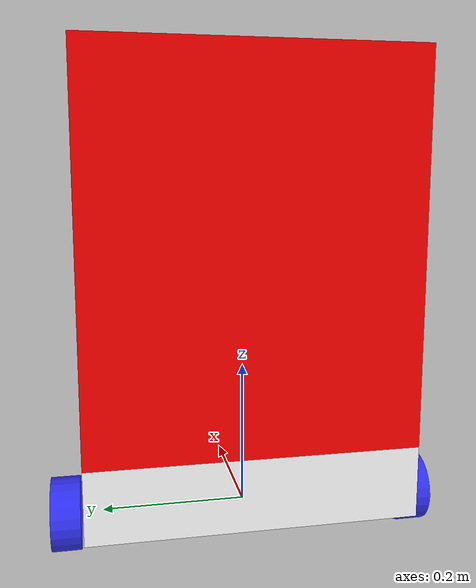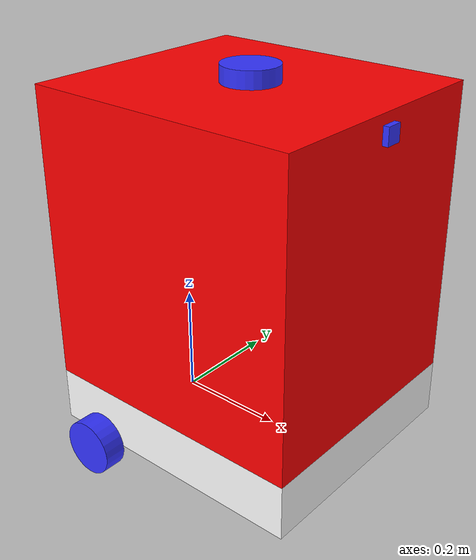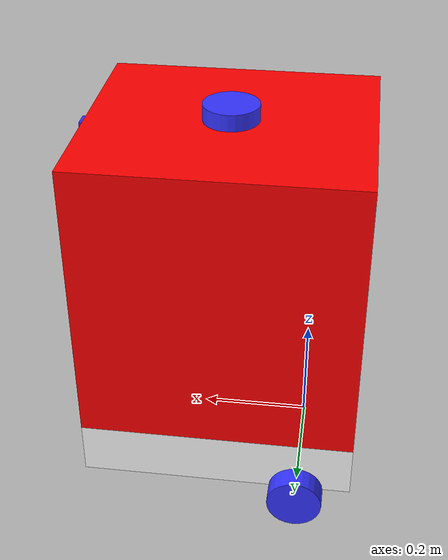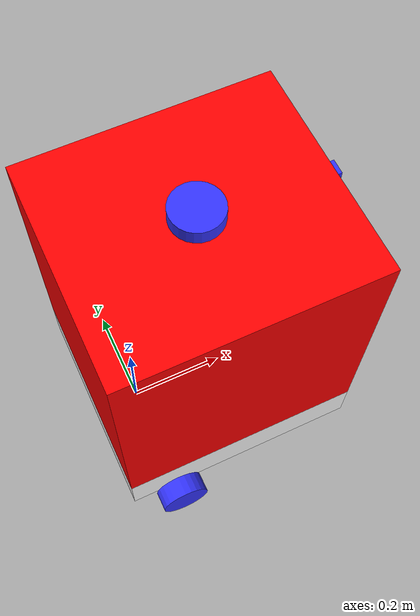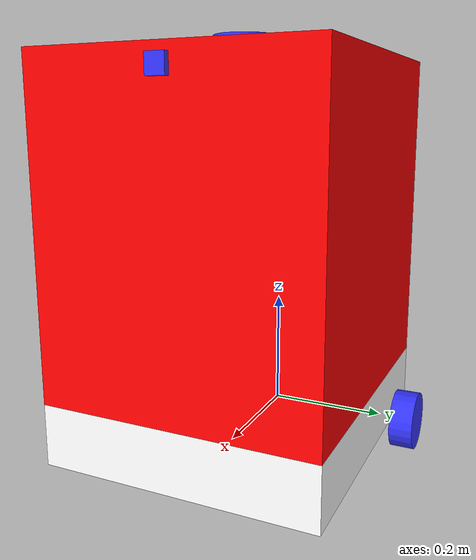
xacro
<?xml version="1.0"?>
<robot xmlns:xacro="http://www.ros.org/wiki/xacro"  name="robot">

<xacro:include filename="ref_1.xacro" />
<xacro:include filename="ref_cam.xacro" />
<xacro:include filename="ref_lidar.xacro" />
<xacro:include filename="ros2_control.xacro" />
</robot>

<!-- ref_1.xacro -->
<robot xmlns:xacro="http://www.ros.org/wiki/xacro" >

  <xacro:include filename="inertial_macros.xacro"/>

    <material name="white">
        <color rgba="1 1 1 1" />
    </material>

    <material name="orange">
        <color rgba="1 0.3 0.1 1"/>
    </material>

    <material name="blue">
        <color rgba="0.2 0.2 1 1"/>
    </material>

    <material name="black">
        <color rgba="0 0 0 1"/>
    </material>

     <material name="red">
        <color rgba="1 0 0 1"/>
    </material>

    <!-- BASE LINK -->

    <link name="base_link">

    </link>

    <!-- CHASSIS LINK -->

    <joint name="chassis_joint" type="fixed">
        <parent link="base_link"/>
        <child link="chassis"/>
        <origin xyz="-0.1 0 0"/>
    </joint>

    <link name="chassis">
        <visual>
            <origin xyz="0.25 0 0.05"/>
            <geometry>
                <box size="0.5 0.45 0.1"/>
            </geometry>
            <material name="white"/>
        </visual>

         <collision>
            <origin xyz="0.25 0 0.05"/>
            <geometry>
                <box size="0.5 0.45 0.1"/>
            </geometry>
        </collision>
        <xacro:inertial_box mass="1.0" x="0.5" y="0.45" z="0.1">
            <origin xyz="0.25 0 0.05" rpy="0 0 0"/>
        </xacro:inertial_box>

    </link>

    <gazebo reference="chassis">
        <material>Gazebo/White</material>
    </gazebo>

    <!-- ref -->

    <joint name="ref_joint" type="fixed">
        <parent link="chassis"/>
        <child link="ref"/>
        <origin xyz="0 0 0.1"/>
    </joint>

    <link name="ref">
        <visual>
            <origin xyz="0.25 0 0.265"/>
            <geometry>
                <box size="0.5 0.45 0.53"/>
            </geometry>
            <material name="red"/>
        </visual>

         <collision>
            <origin xyz="0.25 0 0.265"/>
            <geometry>
                <box size="0.5 0.45 0.53"/>
            </geometry>
        </collision>
        <xacro:inertial_box mass="25.0" x="0.5" y="0.45" z="0.53">
            <origin xyz="0.25 0 0.265" rpy="0 0 0"/>
        </xacro:inertial_box>

    </link>

    <gazebo reference="ref">
        <material>Gazebo/Red</material>
    </gazebo>

    <!-- LEFT WHEEL LINK -->

    <joint name="left_wheel_joint" type="continuous">
        <parent link="base_link"/>
        <child link="left_wheel"/>
        <origin xyz="0 0.250 0" rpy="-${pi/2} 0 0" />
        <axis xyz="0 0 1"/>
    </joint>

    <link name="left_wheel">
        <visual>
            <geometry>
                <cylinder radius="0.05" length="0.04"/>
            </geometry>
            <material name="blue"/>
        </visual>
        <collision>
            <geometry>
                <cylinder radius="0.05" length="0.04"/>
            </geometry>
        </collision>
        <xacro:inertial_cylinder mass="0.1" length="0.04" radius="0.05">
            <origin xyz="0 0 0" rpy="0 0 0"/>
        </xacro:inertial_cylinder>
    </link>

    <gazebo reference="left_wheel">
        <material>Gazebo/Blue</material>
    </gazebo>

    <!-- RIGHT WHEEL LINK -->

    <joint name="right_wheel_joint" type="continuous">
        <parent link="base_link"/>
        <child link="right_wheel"/>
        <origin xyz="0 -0.250 0" rpy="${pi/2} 0 0" />
        <axis xyz="0 0 -1"/>
    </joint>

    <link name="right_wheel">
        <visual>
            <geometry>
                <cylinder radius="0.05" length="0.04"/>
            </geometry>
            <material name="blue"/>
        </visual>
        <collision>
            <geometry>
                <cylinder radius="0.05" length="0.04"/>
            </geometry>
        </collision>
        <xacro:inertial_cylinder mass="0.1" length="0.04" radius="0.05">
            <origin xyz="0 0 0" rpy="0 0 0"/>
        </xacro:inertial_cylinder>
    </link>

    <gazebo reference="right_wheel">
        <material>Gazebo/Blue</material>
    </gazebo>

  <!-- CASTER WHEEL LINK -->

    <joint name="caster_wheel_joint" type="fixed">
        <parent link="chassis"/>
        <child link="caster_wheel"/>
        <origin xyz="0.35 0 0"/>
    </joint>

    <link name="caster_wheel">
        <visual>
            <geometry>
                <sphere radius="0.05"/>
            </geometry>
            <material name="black"/>
        </visual>
        <collision>
            <geometry>
                <sphere radius="0.05"/>
            </geometry>
        </collision>
        <xacro:inertial_sphere mass="0.1" radius="0.05">
            <origin xyz="0 0 0" rpy="0 0 0"/>
        </xacro:inertial_sphere>
    </link>

    <gazebo reference="caster_wheel">
        <material>Gazebo/Black</material>
        <mu1 value="0.001"/>
        <mu2 value="0.001"/>
    </gazebo>

</robot>

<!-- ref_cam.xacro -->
<robot xmlns:xacro="http://www.ros.org/wiki/xacro" >

    <joint name="camera_joint" type="fixed">
        <parent link="ref"/>
        <child link="camera_link"/>
        <origin xyz="0.51 0 0.5" rpy="0 0 0"/>
    </joint>

    <link name="camera_link">
        <visual>
            <geometry>
                <box size="0.010 0.03 0.03"/>
            </geometry>
            <material name="blue"/>
        </visual>
    </link>

    <joint name="camera_optical_joint" type="fixed">
        <parent link="camera_link"/>
        <child link="camera_link_optical"/>
        <origin xyz="0 0 0" rpy="${-pi/2} 0 ${-pi/2}"/>
    </joint>

    <link name="camera_link_optical"></link>

    <gazebo reference="camera_link">
        <material>Gazebo/Blue</material>

        <sensor name="camera" type="camera">
            <pose> 0 0 0 0 0 0 </pose>
            <visualize>true</visualize>
            <update_rate>10</update_rate>
            <camera>
                <horizontal_fov>1.089</horizontal_fov>
                <image>
                    <format>R8G8B8</format>
                    <width>640</width>
                    <height>480</height>
                </image>
                <clip>
                    <near>0.05</near>
                    <far>8.0</far>
                </clip>
            </camera>
            <plugin name="camera_controller" filename="libgazebo_ros_camera.so">
                <frame_name>camera_link_optical</frame_name>
            </plugin>
        </sensor>
    </gazebo>

</robot>

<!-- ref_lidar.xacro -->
<robot xmlns:xacro="http://www.ros.org/wiki/xacro" >

    <joint name="laser_joint" type="fixed">
        <parent link="ref"/>
        <child link="laser_frame"/>
        <origin xyz="0.25 0 0.54" rpy="0 0 0"/>
    </joint>

    <link name="laser_frame">
        <visual>
            <geometry>
                <cylinder radius="0.05" length="0.04"/>
            </geometry>
            <material name="blue"/>
        </visual>
        <collision>
            <geometry>
                <cylinder radius="0.05" length="0.04"/>
            </geometry>
        </collision>
        <xacro:inertial_cylinder mass="0.1" length="0.04" radius="0.05">
            <origin xyz="0 0 0" rpy="0 0 0"/>
        </xacro:inertial_cylinder>
    </link>

    <gazebo reference="laser_frame">
        <material>Gazebo/Blue</material>

        <sensor name="laser" type="ray">
            <pose> 0 0 0 0 0 0 </pose>
            <visualize>true</visualize>
            <update_rate>10</update_rate>
            <ray>
                <scan>
                    <horizontal>
                        <samples>360</samples>
                        <min_angle>-3.14</min_angle>
                        <max_angle>3.14</max_angle>
                    </horizontal>
                </scan>
                <range>
                    <min>0.3</min>
                    <max>12</max>
                </range>
            </ray>
            <plugin name="laser_controller" filename="libgazebo_ros_ray_sensor.so">
                <ros>
                    <argument>~/out:=scan</argument>
                </ros>
                <output_type>sensor_msgs/LaserScan</output_type>
                <frame_name>laser_frame</frame_name>
            </plugin>
        </sensor>
    </gazebo>

</robot>
